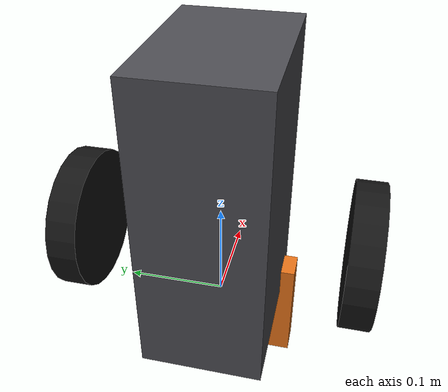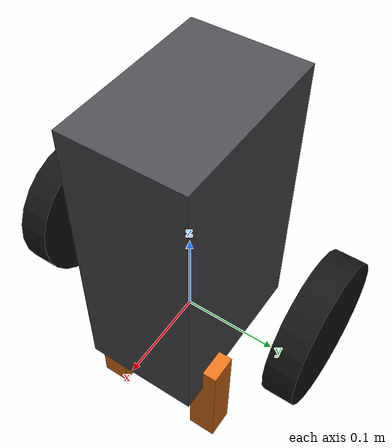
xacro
<?xml version="1.0"?>
<robot name="flex" xmlns:xacro="http://www.ros.org/wiki/xacro">

  <xacro:include filename="$(find flex_description)/urdf/materials.xacro"/>
  <xacro:include filename="$(find flex_description)/urdf/flex_base.xacro"/>
  <xacro:include filename="$(find flex_description)/urdf/flex_wheels.xacro"/>
  <xacro:include filename="$(find flex_description)/urdf/flex_legs.xacro"/>
  <xacro:include filename="$(find flex_description)/urdf/flex_imu.xacro"/>
  <xacro:include filename="$(find flex_description)/urdf/flex.gazebo.xacro"/>

</robot>

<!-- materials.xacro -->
<robot xmlns:xacro="http://www.ros.org/wiki/xacro">

  <material name="flex_chassis_grey">
    <color rgba="0.30 0.30 0.32 1.0"/>
  </material>

  <material name="flex_wheel_black">
    <color rgba="0.08 0.08 0.08 1.0"/>
  </material>

  <material name="flex_leg_orange">
    <color rgba="0.90 0.45 0.10 1.0"/>
  </material>

  <material name="flex_imu_blue">
    <color rgba="0.10 0.35 0.85 1.0"/>
  </material>

</robot>

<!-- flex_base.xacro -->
<robot xmlns:xacro="http://www.ros.org/wiki/xacro">

  <!-- Placeholder geometry/inertia — see config/flex_inertials.yaml and
       docs/architecture/hardware_architecture.md (CAD-to-Sim Pipeline) -->
  <xacro:property name="base_x" value="0.18"/>
  <xacro:property name="base_y" value="0.12"/>
  <xacro:property name="base_z" value="0.30"/>
  <xacro:property name="base_mass" value="2.3"/>
  <xacro:property name="base_ground_clearance" value="0.122"/> <!-- wheel_radius + half wheel-axle drop, see flex_wheels.xacro -->

  <!-- base_footprint: standard ROS2 convention — ground-projected origin, no inertia -->
  <link name="base_footprint"/>

  <joint name="base_footprint_joint" type="fixed">
    <parent link="base_footprint"/>
    <child link="base_link"/>
    <origin xyz="0 0 ${base_ground_clearance}" rpy="0 0 0"/>
  </joint>

  <link name="base_link">
    <visual>
      <origin xyz="0 0 0" rpy="0 0 0"/>
      <geometry>
        <box size="${base_x} ${base_y} ${base_z}"/>
      </geometry>
      <material name="flex_chassis_grey"/>
    </visual>
    <collision>
      <origin xyz="0 0 0" rpy="0 0 0"/>
      <geometry>
        <box size="${base_x} ${base_y} ${base_z}"/>
      </geometry>
    </collision>
    <inertial>
      <origin xyz="0 0 0" rpy="0 0 0"/>
      <mass value="${base_mass}"/>
      <inertia ixx="0.02001" iyy="0.02346" izz="0.00897" ixy="0" ixz="0" iyz="0"/>
    </inertial>
  </link>

</robot>

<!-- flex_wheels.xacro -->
<robot xmlns:xacro="http://www.ros.org/wiki/xacro">

  <!-- Placeholder geometry/inertia — see config/flex_inertials.yaml -->
  <xacro:property name="wheel_radius" value="0.072"/>      <!-- Rroue, verified in firmware/src/main.cpp -->
  <xacro:property name="wheel_thickness" value="0.03"/>
  <xacro:property name="wheel_mass" value="0.2"/>
  <xacro:property name="wheelbase" value="0.280"/>          <!-- verified in firmware/src/main.cpp rotationAngle calc -->
  <xacro:property name="wheel_z_offset" value="-0.05"/>     <!-- axle drop below base_link origin -->

  <xacro:macro name="flex_wheel" params="side y_reflect">
    <link name="${side}_wheel_link">
      <visual>
        <origin xyz="0 0 0" rpy="${pi/2} 0 0"/>
        <geometry>
          <cylinder radius="${wheel_radius}" length="${wheel_thickness}"/>
        </geometry>
        <material name="flex_wheel_black"/>
      </visual>
      <collision>
        <origin xyz="0 0 0" rpy="${pi/2} 0 0"/>
        <geometry>
          <cylinder radius="${wheel_radius}" length="${wheel_thickness}"/>
        </geometry>
      </collision>
      <inertial>
        <origin xyz="0 0 0" rpy="0 0 0"/>
        <mass value="${wheel_mass}"/>
        <!-- iyy is the spin axis (joint axis is y) -->
        <inertia ixx="0.0002742" iyy="0.0005184" izz="0.0002742" ixy="0" ixz="0" iyz="0"/>
      </inertial>
    </link>

    <joint name="${side}_wheel_joint" type="continuous">
      <parent link="base_link"/>
      <child link="${side}_wheel_link"/>
      <origin xyz="0 ${y_reflect * wheelbase / 2} ${wheel_z_offset}" rpy="0 0 0"/>
      <axis xyz="0 1 0"/>
      <dynamics damping="0.05" friction="0.01"/>
    </joint>

    <gazebo reference="${side}_wheel_link">
      <mu1>1.0</mu1>
      <mu2>1.0</mu2>
    </gazebo>
  </xacro:macro>

  <xacro:flex_wheel side="left" y_reflect="1"/>
  <xacro:flex_wheel side="right" y_reflect="-1"/>

</robot>

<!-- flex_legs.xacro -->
<robot xmlns:xacro="http://www.ros.org/wiki/xacro">

  <xacro:property name="leg_x" value="0.03"/>
  <xacro:property name="leg_y" value="0.03"/>
  <xacro:property name="leg_z" value="0.12"/>
  <xacro:property name="leg_mass" value="0.1"/>

  <!-- Revolute limits approximate the servo's calibrated sit/stand travel
       (servo*posbas / servo*poshaute in firmware/src/main.cpp) -->
  <xacro:property name="leg_lower_limit" value="-1.2"/>
  <xacro:property name="leg_upper_limit" value="0.2"/>
  <xacro:property name="leg_effort" value="2.0"/>
  <xacro:property name="leg_velocity" value="1.0"/>

  <xacro:macro name="flex_leg" params="side y_reflect">
    <link name="${side}_leg_link">
      <visual>
        <origin xyz="0 0 ${-leg_z/2}" rpy="0 0 0"/>
        <geometry>
          <box size="${leg_x} ${leg_y} ${leg_z}"/>
        </geometry>
        <material name="flex_leg_orange"/>
      </visual>
      <collision>
        <origin xyz="0 0 ${-leg_z/2}" rpy="0 0 0"/>
        <geometry>
          <box size="${leg_x} ${leg_y} ${leg_z}"/>
        </geometry>
      </collision>
      <inertial>
        <origin xyz="0 0 ${-leg_z/2}" rpy="0 0 0"/>
        <mass value="${leg_mass}"/>
        <inertia ixx="0.0001275" iyy="0.0001275" izz="0.000015" ixy="0" ixz="0" iyz="0"/>
      </inertial>
    </link>

    <joint name="${side}_leg_joint" type="revolute">
      <parent link="base_link"/>
      <child link="${side}_leg_link"/>
      <origin xyz="0.05 ${y_reflect * 0.06} -0.12" rpy="0 0 0"/>
      <axis xyz="0 1 0"/>
      <limit lower="${leg_lower_limit}" upper="${leg_upper_limit}" effort="${leg_effort}" velocity="${leg_velocity}"/>
      <dynamics damping="0.1" friction="0.05"/>
    </joint>
  </xacro:macro>

  <xacro:flex_leg side="left" y_reflect="1"/>
  <xacro:flex_leg side="right" y_reflect="-1"/>

</robot>

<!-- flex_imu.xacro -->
<robot xmlns:xacro="http://www.ros.org/wiki/xacro">

  <xacro:property name="imu_x" value="0.02"/>
  <xacro:property name="imu_y" value="0.02"/>
  <xacro:property name="imu_z" value="0.01"/>
  <xacro:property name="imu_mass" value="0.01"/>

  <link name="imu_link">
    <visual>
      <geometry>
        <box size="${imu_x} ${imu_y} ${imu_z}"/>
      </geometry>
      <material name="flex_imu_blue"/>
    </visual>
    <collision>
      <geometry>
        <box size="${imu_x} ${imu_y} ${imu_z}"/>
      </geometry>
    </collision>
    <inertial>
      <mass value="${imu_mass}"/>
      <inertia ixx="0.000000417" iyy="0.000000417" izz="0.000000667" ixy="0" ixz="0" iyz="0"/>
    </inertial>
  </link>

  <joint name="imu_joint" type="fixed">
    <parent link="base_link"/>
    <child link="imu_link"/>
    <origin xyz="0 0 0.05" rpy="0 0 0"/>
  </joint>

  <gazebo reference="imu_link">
    <sensor name="flex_imu" type="imu">
      <always_on>true</always_on>
      <update_rate>100</update_rate>
      <topic>imu</topic>
      <gz_frame_id>imu_link</gz_frame_id>
    </sensor>
  </gazebo>

</robot>
